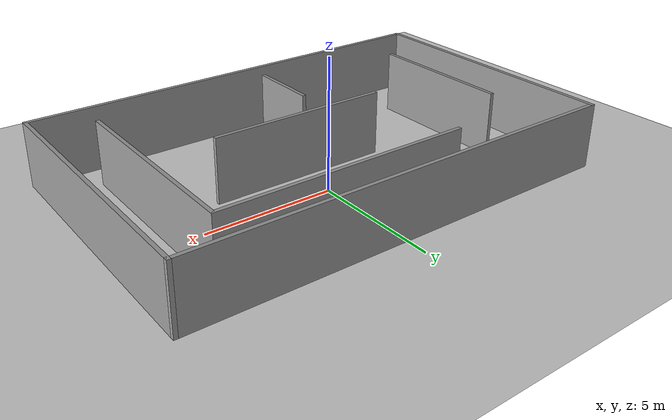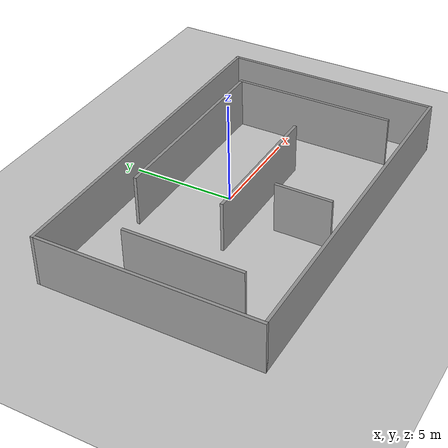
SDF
<sdf version="1.7">
 <world name="default">
  <light name="sun" type="directional">
   <pose>0 0 10 0 -0 0</pose>
   <diffuse>0.8 0.8 0.8 1</diffuse>
   <specular>0.2 0.2 0.2 1</specular>
   <attenuation>
    <range>1000</range>
    <constant>0.9</constant>
    <linear>0.01</linear>
    <quadratic>0.001</quadratic>
   </attenuation>
   <direction>-0.5 0.1 -0.9</direction>
   <spot><inner_angle>0</inner_angle><outer_angle>0</outer_angle><falloff>0</falloff></spot>
  </light>
  <model name="ground_plane">
   <static>1</static>
   <link name="link">
    <collision name="collision">
     <geometry><plane><normal>0 0 1</normal><size>100 100</size></plane></geometry>
     <surface>
      <contact><collide_bitmask>65535</collide_bitmask></contact>
      <friction><ode><mu>100</mu><mu2>50</mu2></ode></friction>
     </surface>
    </collision>
    <visual name="visual">
     <cast_shadows>0</cast_shadows>
     <geometry><plane><normal>0 0 1</normal><size>100 100</size></plane></geometry>
     <material>
      <script><uri>file://media/materials/scripts/gazebo.material</uri><name>Gazebo/Grey</name></script>
     </material>
    </visual>
   </link>
  </model>
  <gravity>0 0 -9.8</gravity>
  <magnetic_field>6e-06 2.3e-05 -4.2e-05</magnetic_field>
  <atmosphere type="adiabatic"/>
  <physics type="ode">
   <max_step_size>0.001</max_step_size>
   <real_time_factor>1</real_time_factor>
   <real_time_update_rate>1000</real_time_update_rate>
  </physics>
  <scene><ambient>0.4 0.4 0.4 1</ambient><background>0.7 0.7 0.7 1</background><shadows>1</shadows></scene>
  <spherical_coordinates>
   <surface_model>EARTH_WGS84</surface_model>
   <latitude_deg>0</latitude_deg>
   <longitude_deg>0</longitude_deg>
   <elevation>0</elevation>
   <heading_deg>0</heading_deg>
  </spherical_coordinates>
  <model name="maze">
   <pose>-0.329869 -1.19874 0 0 -0 0</pose>
   <link name="Wall_10">
    <collision name="Wall_10_Collision">
     <geometry><box><size>17.25 0.15 2.5</size></box></geometry>
     <pose>0 0 1.25 0 -0 0</pose>
    </collision>
    <visual name="Wall_10_Visual">
     <pose>0 0 1.25 0 -0 0</pose>
     <geometry><box><size>17.25 0.15 2.5</size></box></geometry>
     <material>
      <script><uri>file://media/materials/scripts/gazebo.material</uri><name>Gazebo/Grey</name></script>
      <ambient>1 1 1 1</ambient>
     </material>
     <meta><layer>0</layer></meta>
    </visual>
    <pose>-0 5.3 0 0 -0 3.14159</pose>
   </link>
   <link name="Wall_12">
    <collision name="Wall_12_Collision">
     <geometry><box><size>5.75 0.15 2.5</size></box></geometry>
     <pose>0 0 1.25 0 -0 0</pose>
    </collision>
    <visual name="Wall_12_Visual">
     <pose>0 0 1.25 0 -0 0</pose>
     <geometry><box><size>5.75 0.15 2.5</size></box></geometry>
     <material>
      <script><uri>file://media/materials/scripts/gazebo.material</uri><name>Gazebo/Grey</name></script>
      <ambient>1 1 1 1</ambient>
     </material>
     <meta><layer>0</layer></meta>
    </visual>
    <pose>-6.43927 -0.455016 0 0 -0 -1.5708</pose>
   </link>
   <link name="Wall_14">
    <collision name="Wall_14_Collision">
     <geometry><box><size>9.75 0.15 2.5</size></box></geometry>
     <pose>0 0 1.25 0 -0 0</pose>
    </collision>
    <visual name="Wall_14_Visual">
     <pose>0 0 1.25 0 -0 0</pose>
     <geometry><box><size>9.75 0.15 2.5</size></box></geometry>
     <material>
      <script><uri>file://media/materials/scripts/gazebo.material</uri><name>Gazebo/Grey</name></script>
      <ambient>1 1 1 1</ambient>
     </material>
     <meta><layer>0</layer></meta>
    </visual>
    <pose>1.66753 3.92803 0 0 -0 0</pose>
   </link>
   <link name="Wall_15">
    <collision name="Wall_15_Collision">
     <geometry><box><size>8 0.15 2.5</size></box></geometry>
     <pose>0 0 1.25 0 -0 0</pose>
    </collision>
    <visual name="Wall_15_Visual">
     <pose>0 0 1.25 0 -0 0</pose>
     <geometry><box><size>8 0.15 2.5</size></box></geometry>
     <material>
      <script><uri>file://media/materials/scripts/gazebo.material</uri><name>Gazebo/Grey</name></script>
      <ambient>1 1 1 1</ambient>
     </material>
     <meta><layer>0</layer></meta>
    </visual>
    <pose>6.46753 0.003028 0 0 -0 -1.5708</pose>
   </link>
   <link name="Wall_17">
    <collision name="Wall_17_Collision">
     <geometry><box><size>7 0.15 2.5</size></box></geometry>
     <pose>0 0 1.25 0 -0 0</pose>
    </collision>
    <visual name="Wall_17_Visual">
     <pose>0 0 1.25 0 -0 0</pose>
     <geometry><box><size>7 0.15 2.5</size></box></geometry>
     <material>
      <script><uri>file://media/materials/scripts/gazebo.material</uri><name>Gazebo/Grey</name></script>
      <ambient>1 1 1 1</ambient>
     </material>
     <meta><layer>0</layer></meta>
    </visual>
    <pose>0.433244 -0.328602 0 0 -0 0</pose>
   </link>
   <link name="Wall_19">
    <collision name="Wall_19_Collision">
     <geometry><box><size>2.75 0.15 2.5</size></box></geometry>
     <pose>0 0 1.25 0 -0 0</pose>
    </collision>
    <visual name="Wall_19_Visual">
     <pose>0 0 1.25 0 -0 0</pose>
     <geometry><box><size>2.75 0.15 2.5</size></box></geometry>
     <material>
      <script><uri>file://media/materials/scripts/gazebo.material</uri><name>Gazebo/Grey</name></script>
      <ambient>1 1 1 1</ambient>
     </material>
     <meta><layer>0</layer></meta>
    </visual>
    <pose>-0.669957 -3.00057 0 0 -0 -1.5708</pose>
   </link>
   <link name="Wall_7">
    <collision name="Wall_7_Collision">
     <geometry><box><size>10.75 0.15 2.5</size></box></geometry>
     <pose>0 0 1.25 0 -0 0</pose>
    </collision>
    <visual name="Wall_7_Visual">
     <pose>0 0 1.25 0 -0 0</pose>
     <geometry><box><size>10.75 0.15 2.5</size></box></geometry>
     <material>
      <script><uri>file://media/materials/scripts/gazebo.material</uri><name>Gazebo/Grey</name></script>
      <ambient>1 1 1 1</ambient>
     </material>
     <meta><layer>0</layer></meta>
    </visual>
    <pose>-8.55 0 0 0 -0 -1.5708</pose>
   </link>
   <link name="Wall_8">
    <collision name="Wall_8_Collision">
     <geometry><box><size>17.25 0.15 2.5</size></box></geometry>
     <pose>0 0 1.25 0 -0 0</pose>
    </collision>
    <visual name="Wall_8_Visual">
     <pose>0 0 1.25 0 -0 0</pose>
     <geometry><box><size>17.25 0.15 2.5</size></box></geometry>
     <material>
      <script><uri>file://media/materials/scripts/gazebo.material</uri><name>Gazebo/Grey</name></script>
      <ambient>1 1 1 1</ambient>
     </material>
     <meta><layer>0</layer></meta>
    </visual>
    <pose>-0 -5.3 0 0 -0 0</pose>
   </link>
   <link name="Wall_9">
    <collision name="Wall_9_Collision">
     <geometry><box><size>10.75 0.15 2.5</size></box></geometry>
     <pose>0 0 1.25 0 -0 0</pose>
    </collision>
    <visual name="Wall_9_Visual">
     <pose>0 0 1.25 0 -0 0</pose>
     <geometry><box><size>10.75 0.15 2.5</size></box></geometry>
     <material>
      <script><uri>file://media/materials/scripts/gazebo.material</uri><name>Gazebo/Grey</name></script>
      <ambient>1 1 1 1</ambient>
     </material>
     <meta><layer>0</layer></meta>
    </visual>
    <pose>8.55 0 0 0 -0 1.5708</pose>
   </link>
   <static>1</static>
  </model>
 </world>
</sdf>
